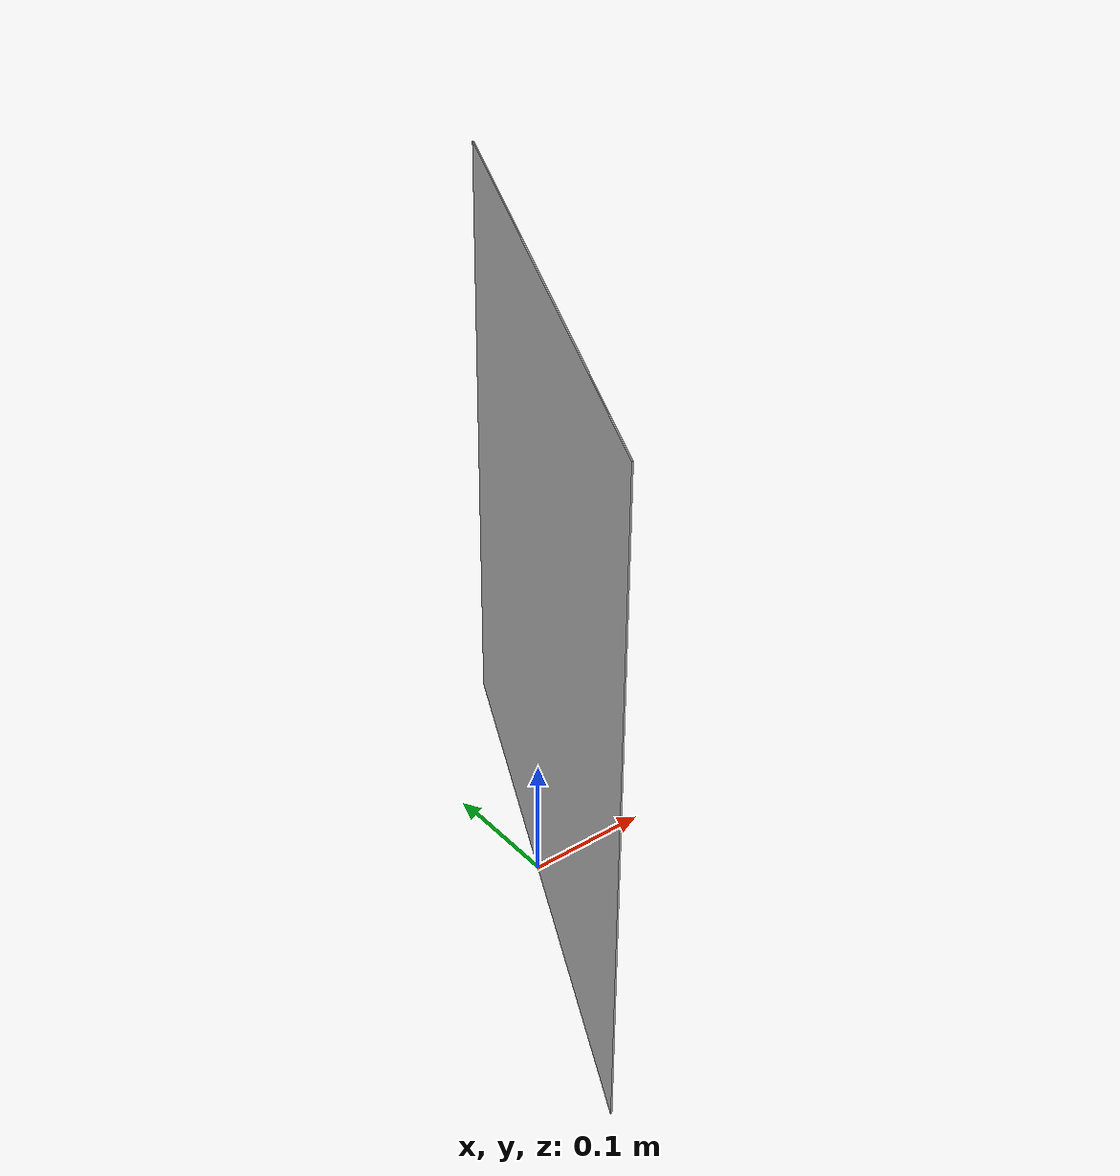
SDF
<?xml version="1.0" ?>
<sdf version="1.5">
  <model name="Tag1">
    <static>true</static>
    <link name="link">
      <pose>0 0 0.25 0 0 -90</pose>
      <collision name="collision">
        <geometry>
          <box>
            <size>.5 0.001 .5</size>
          </box>
        </geometry>
      </collision>
      <visual name="visual">
        <cast_shadows>false</cast_shadows>
        <geometry>
          <box>
            <size>.5 0.001 .5</size>
          </box>
        </geometry>
        <material>
          <script>
            <uri>model://Tag1/materials/scripts</uri>
            <uri>model://Tag1/materials/textures</uri>
            <name>vrc/Tag1</name>
          </script>
        </material>
      </visual>
    </link>
  </model>
</sdf>
